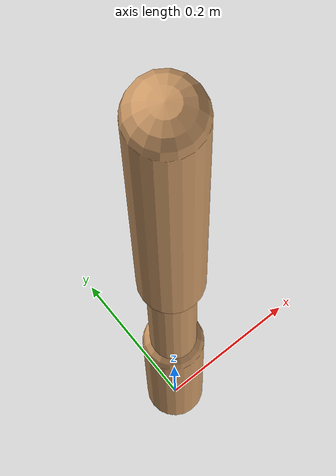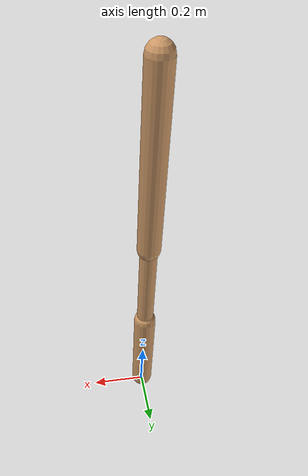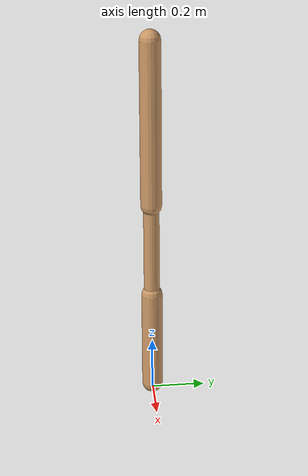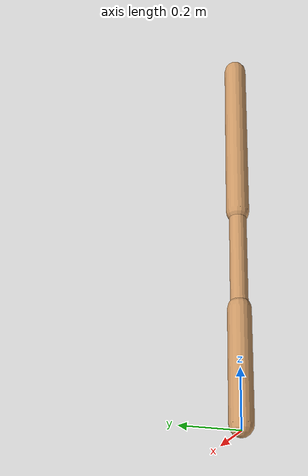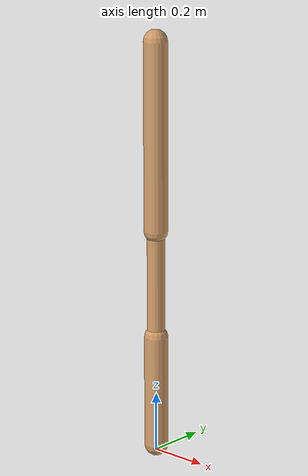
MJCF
<mujoco model="rabbit" >
  <compiler angle="degree" coordinate="local" inertiafromgeom="true"/>
  <default>
    <joint armature="0.01" damping=".1" limited="true"/>
    <geom conaffinity="0" condim="3" contype="1" density="1000" friction="1 1 1" rgba="0.8 0.6 .4 1"/>
  </default>
  <option integrator="RK4" timestep="0.002"/>
  <worldbody>
    <light cutoff="100" diffuse="1 1 1" dir="-0 0 -1.3" directional="true" exponent="1" pos="0 0 1.3" specular=".1 .1 .1"/>
    <body name="torso" pos="0 0 1.115" quat = "1 0 0 0">
      <camera name='track' mode='track' pos="0 -3 -0.115" zaxis="0 -1 0.5"/>
      <inertial pos="0 0 0" quat="0.707107 0 0 0.707107" mass="12" diaginertia="1.33 1.33 0.1" />
      <!-- The three following joints are located in the hip of the robot and allow him to move in the sagital plane -->
      <joint armature="0" axis="1 0 0" damping="0" limited="false" name="rootx" pos="0 0 -1.115" stiffness="0" type="slide"/>
      <joint armature="0" axis="0 0 1" damping="0" limited="false" name="rootz" pos="0 0 -1.115" ref="0.8" stiffness="0" type="slide"/>
      <joint armature="0" axis="0 1 0" damping="0" limited="false" name="rooty" pos="0 0 0.135" stiffness="0" type="hinge"/>
      <geom friction="0.9" fromto="0 0 0.28 0 0 -0.35" name="torso_geom" size="0.04" type="capsule"/>
      <body name="thigh" pos="0 0 -0.515">
      	<inertial pos="0 0 -0.515" mass="6.8" diaginertia="0.47 0.47 0.05" />
        <joint axis="0 1 0" name="thigh_joint" pos="0 0 0.2" ref="-180" range="90 250" type="hinge"/>
        <geom friction="0.9" fromto="0 0 0.2 0 0 -0.2" name="thigh_geom" size="0.03" type="capsule"/>
        <body name="leg" pos="0 0 -0.4">
          <inertial pos="0 0 -0.36" mass="3.2" diaginertia="0.2 0.2 0.02" />
          <joint axis="0 1 0" name="leg_joint" pos="0 0 0.2" range="0 150" type="hinge"/>
          <geom friction="2" fromto="0 0 0.2 0 0 -0.18" name="leg_geom" size="0.04" type="capsule"/>
          <site name='t1' pos='0 0 -0.16' type='box' group='4' size='.04 .04 .06'/>
        </body>
      </body>
      <!-- copied and then replace thigh->thigh_left, leg->leg_left, foot->foot_right -->
      <body name="ca_left" pos="0 0 -0.515">
      	<inertial pos="0 0 -0.515" mass="6.8" diaginertia="0.47 0.47 0.05" />
        <joint axis="0 1 0" name="thigh_left_joint" pos="0 0 0.2" ref="-180" range="90 250" type="hinge"/>
        <geom friction="0.9" fromto="0 0 0.2 0 0 -0.2" name="thigh_left_geom" rgba=".7 .3 .6 1" size="0.03" type="capsule"/>
        <body name="leg_left" pos="0 0 -0.4">
          <inertial pos="0 0 -0.36" mass="3.2" diaginertia="0.2 0.2 0.02" />
          <joint axis="0 1 0" name="leg_left_joint" pos="0 0 0.2" range="0 150" type="hinge"/>
          <geom friction="2" fromto="0 0 0.2 0 0 -0.18" name="leg_left_geom" rgba=".7 .3 .6 1" size="0.04" type="capsule"/>
          <site name='t2' pos='0 0 -0.16' type='box' group='4' size='.04 .04 .06'/>
        </body>
      </body>
    </body>
  </worldbody>
  <actuator>
    <motor ctrllimited="true" ctrlrange="-4.0 4.0" gear="10" joint="thigh_joint"/>
    <motor ctrllimited="true" ctrlrange="-4.0 4.0" gear="10" joint="leg_joint"/>
    <motor ctrllimited="true" ctrlrange="-4.0 4.0" gear="10" joint="thigh_left_joint"/>
    <motor ctrllimited="true" ctrlrange="-4.0 4.0" gear="10" joint="leg_left_joint"/>
  </actuator>
    <asset>
        <texture type="skybox" builtin="gradient" rgb1=".4 .5 .6" rgb2="0 0 0"
            width="100" height="100"/>
        <texture builtin="flat" height="1278" mark="cross" markrgb="1 1 1" name="texgeom" random="0.01" rgb1="0.8 0.6 0.4" rgb2="0.8 0.6 0.4" type="cube" width="127"/>
        <texture builtin="checker" height="100" name="texplane" rgb1="0 0 0" rgb2="0.8 0.8 0.8" type="2d" width="100"/>
        <material name="MatPlane" reflectance="0.5" shininess="1" specular="1" texrepeat="60 60" texture="texplane"/>
        <material name="geom" texture="texgeom" texuniform="true"/>
    </asset>

  <sensor>
    <subtreelinvel name="torso_subtreelinvel" body="torso"/>
    <touch name="s_t1"  site="t1"/>
    <touch name="s_t2"  site="t2"/>
  </sensor>

</mujoco>
